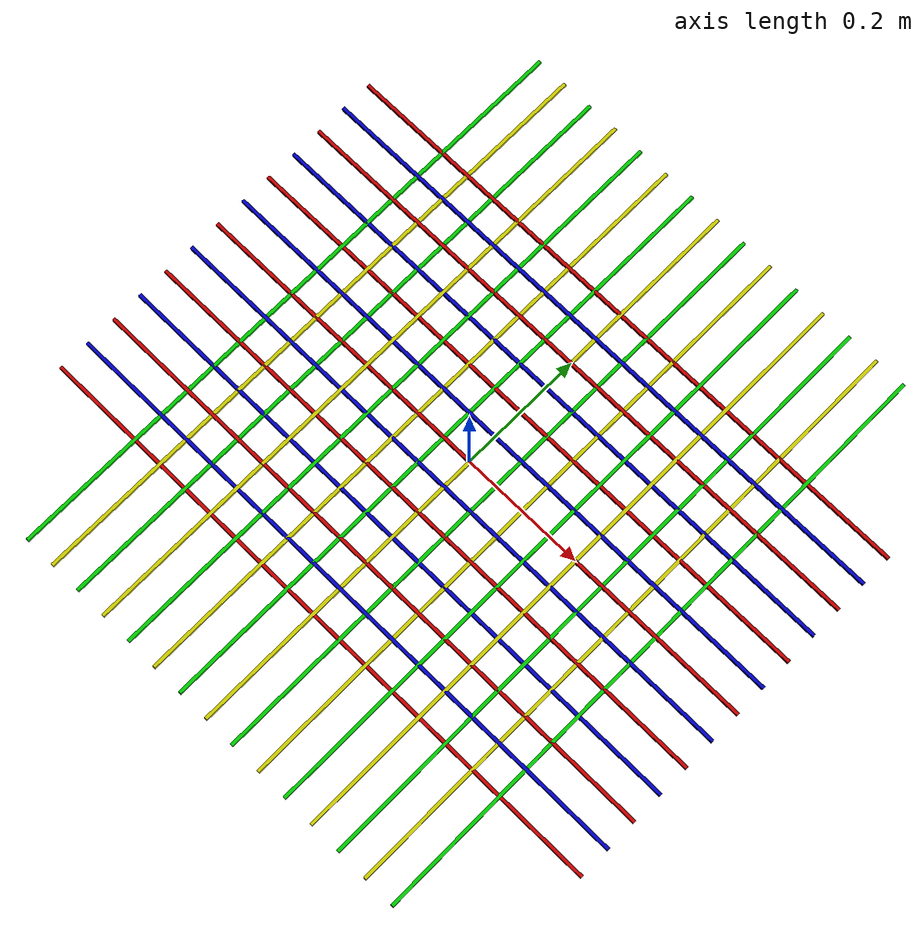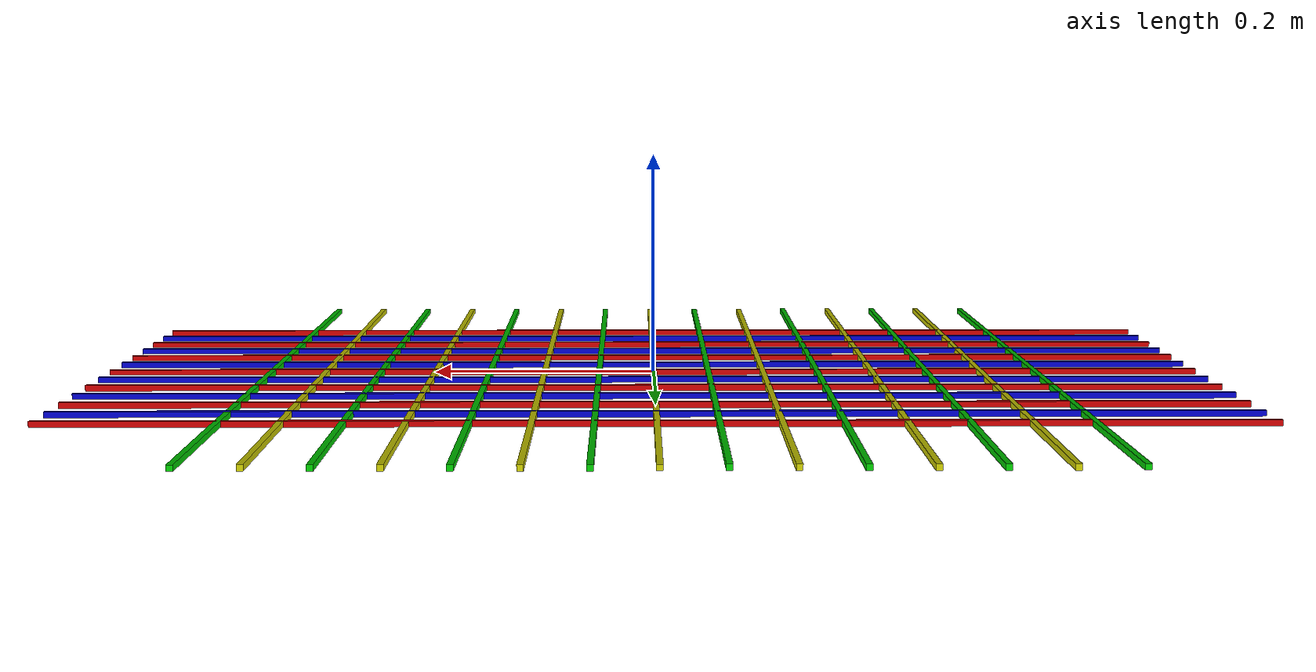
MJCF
<mujoco>
<worldbody>
    <geom type="box" size="0.5 0.0025 0.0025" pos="0 0 0" rgba="0.8 0.0 0.0 0.9" contype="0" conaffinity="0"/>
    <geom type="box" size="0.5 0.0025 0.0025" pos="0 0.05 0" rgba="0.0 0.0 0.8 0.9" contype="0" conaffinity="0"/>
    <geom type="box" size="0.5 0.0025 0.0025" pos="0 0.10 0" rgba="0.8 0.0 0.0 0.9" contype="0" conaffinity="0"/>
    <geom type="box" size="0.5 0.0025 0.0025" pos="0 0.15 0" rgba="0.0 0.0 0.8 0.9" contype="0" conaffinity="0"/>
    <geom type="box" size="0.5 0.0025 0.0025" pos="0 0.20 0" rgba="0.8 0.0 0.0 0.9" contype="0" conaffinity="0"/>
    <geom type="box" size="0.5 0.0025 0.0025" pos="0 0.25 0" rgba="0.0 0.0 0.8 0.9" contype="0" conaffinity="0"/>
    <geom type="box" size="0.5 0.0025 0.0025" pos="0 0.30 0" rgba="0.8 0.0 0.0 0.9" contype="0" conaffinity="0"/>

    <geom type="box" size="0.5 0.0025 0.0025" pos="0 -0.05 0" rgba="0.0 0.0 0.8 0.9" contype="0" conaffinity="0"/>
    <geom type="box" size="0.5 0.0025 0.0025" pos="0 -0.10 0" rgba="0.8 0.0 0.0 0.9" contype="0" conaffinity="0"/>
    <geom type="box" size="0.5 0.0025 0.0025" pos="0 -0.15 0" rgba="0.0 0.0 0.8 0.9" contype="0" conaffinity="0"/>
    <geom type="box" size="0.5 0.0025 0.0025" pos="0 -0.20 0" rgba="0.8 0.0 0.0 0.9" contype="0" conaffinity="0"/>
    <geom type="box" size="0.5 0.0025 0.0025" pos="0 -0.25 0" rgba="0.0 0.0 0.8 0.9" contype="0" conaffinity="0"/>
    <geom type="box" size="0.5 0.0025 0.0025" pos="0 -0.30 0" rgba="0.8 0.0 0.0 0.9" contype="0" conaffinity="0"/>

    <geom type="box" size="0.0025 0.5 0.0025" pos="0.0 0 0" rgba="0.8 0.8 0.0 0.9" contype="0" conaffinity="0"/>
    <geom type="box" size="0.0025 0.5 0.0025" pos="0.05 0 0" rgba="0.0 0.8 0.0 0.9" contype="0" conaffinity="0"/>
    <geom type="box" size="0.0025 0.5 0.0025" pos="0.10 0 0" rgba="0.8 0.8 0.0 0.9" contype="0" conaffinity="0"/>
    <geom type="box" size="0.0025 0.5 0.0025" pos="0.15 0 0" rgba="0.0 0.8 0.0 0.9" contype="0" conaffinity="0"/>
    <geom type="box" size="0.0025 0.5 0.0025" pos="0.20 0 0" rgba="0.8 0.8 0.0 0.9" contype="0" conaffinity="0"/>
    <geom type="box" size="0.0025 0.5 0.0025" pos="0.25 0 0" rgba="0.0 0.8 0.0 0.9" contype="0" conaffinity="0"/>
    <geom type="box" size="0.0025 0.5 0.0025" pos="0.30 0 0" rgba="0.8 0.8 0.0 0.9" contype="0" conaffinity="0"/>
    <geom type="box" size="0.0025 0.5 0.0025" pos="0.35 0 0" rgba="0.0 0.8 0.0 0.9" contype="0" conaffinity="0"/>

    <geom type="box" size="0.0025 0.5 0.0025" pos="-0.05 0 0" rgba="0.0 0.8 0.0 0.9" contype="0" conaffinity="0"/>
    <geom type="box" size="0.0025 0.5 0.0025" pos="-0.10 0 0" rgba="0.8 0.8 0.0 0.9" contype="0" conaffinity="0"/>
    <geom type="box" size="0.0025 0.5 0.0025" pos="-0.15 0 0" rgba="0.0 0.8 0.0 0.9" contype="0" conaffinity="0"/>
    <geom type="box" size="0.0025 0.5 0.0025" pos="-0.20 0 0" rgba="0.8 0.8 0.0 0.9" contype="0" conaffinity="0"/>
    <geom type="box" size="0.0025 0.5 0.0025" pos="-0.25 0 0" rgba="0.0 0.8 0.0 0.9" contype="0" conaffinity="0"/>
    <geom type="box" size="0.0025 0.5 0.0025" pos="-0.30 0 0" rgba="0.8 0.8 0.0 0.9" contype="0" conaffinity="0"/>
    <geom type="box" size="0.0025 0.5 0.0025" pos="-0.35 0 0" rgba="0.0 0.8 0.0 0.9" contype="0" conaffinity="0"/>
</worldbody>
</mujoco>
